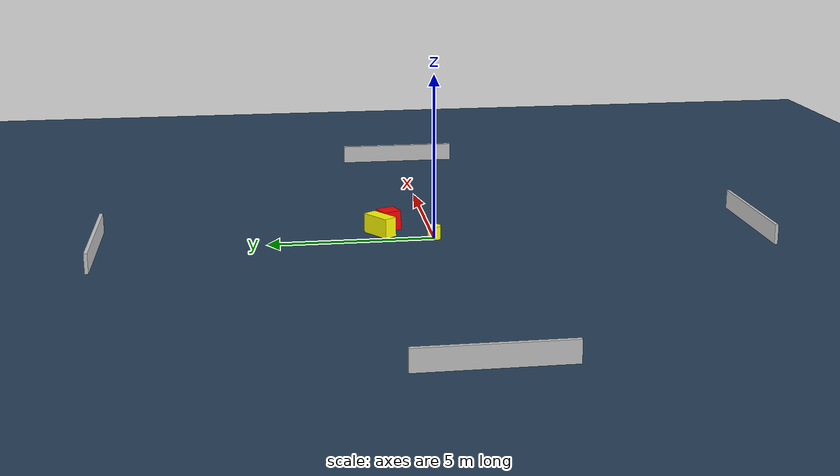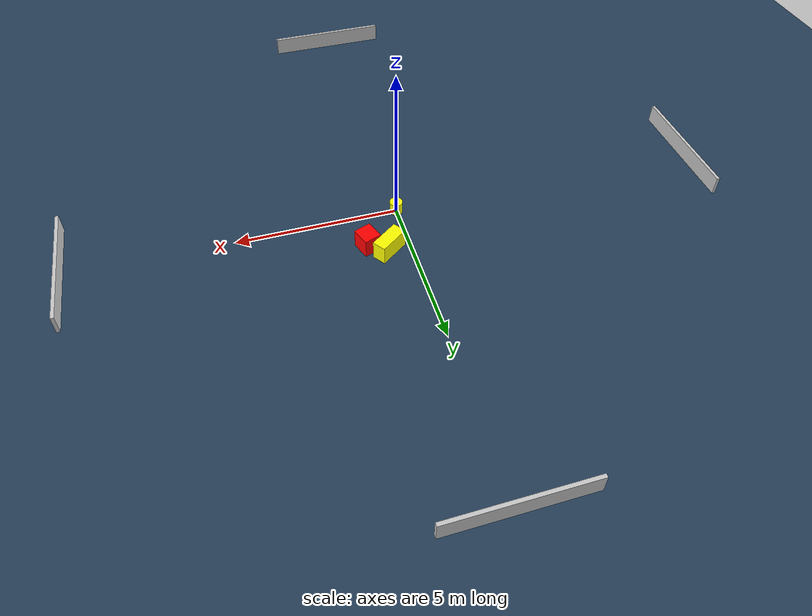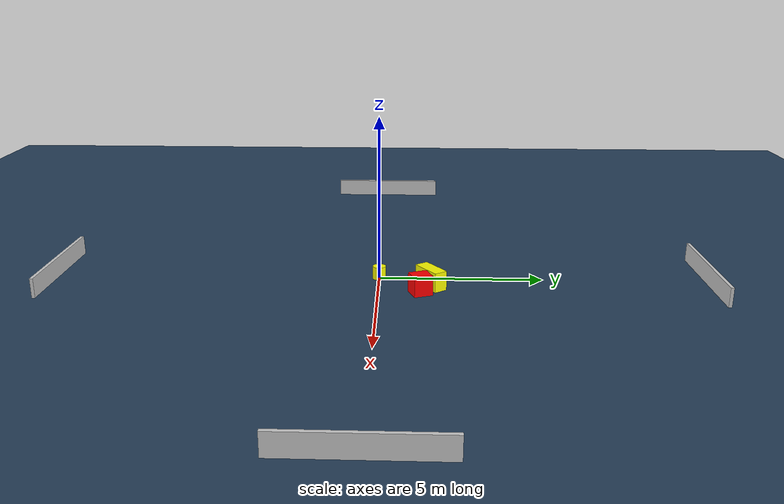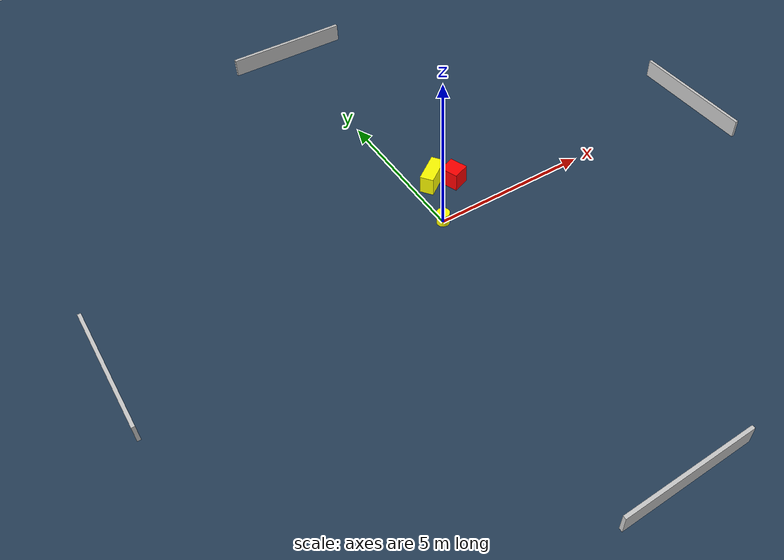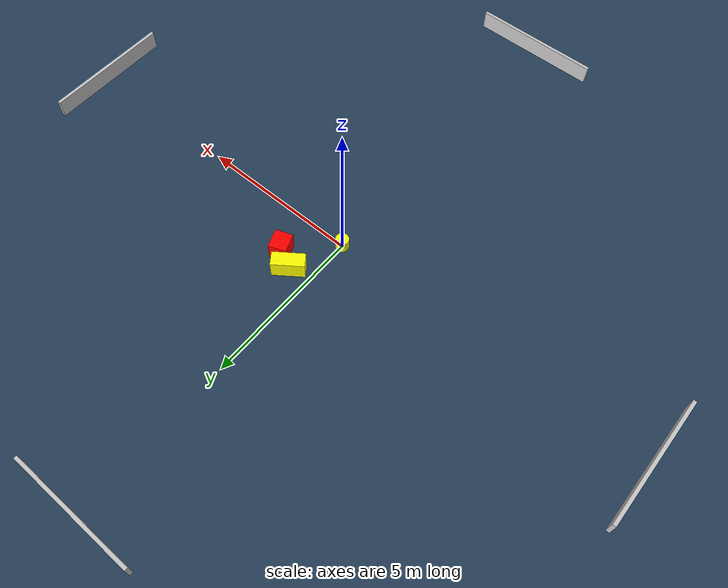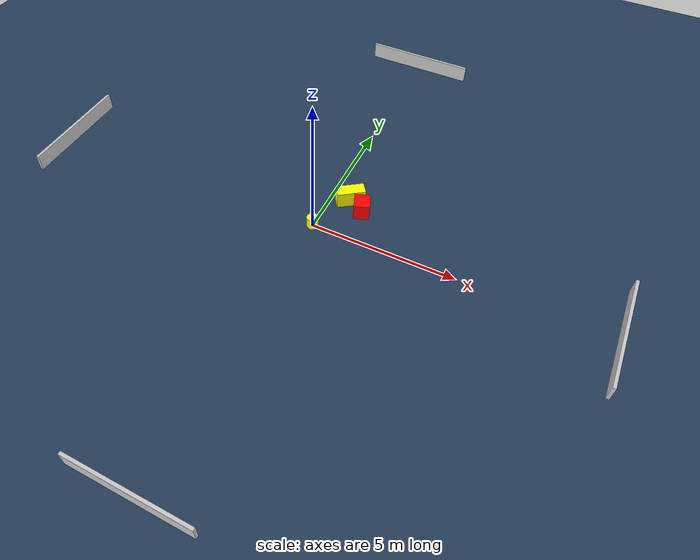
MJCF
<?xml version="1.0" ?>
<mujoco model="generated_environment">
  <option timestep="0.01" integrator="RK4" cone="elliptic"/>
  <default>
    <geom density="1"/>
  </default>
  <asset>
    <texture builtin="gradient" height="3072" name="skybox" rgb1="0.3 0.5 0.7" rgb2="0 0 0" type="skybox" width="512"/>
    <texture builtin="checker" height="300" name="groundplane" rgb1="0.2 0.3 0.4" rgb2="0.1 0.2 0.3" type="2d" width="300"/>
    <material name="groundplane" reflectance="0.2" texrepeat="5 5" texture="groundplane"/>
  </asset>
  <worldbody>
    <light dir="0 0 -1" directional="true" pos="0 0 1.5"/>
    <geom condim="3" friction="0.5 0.005 0.001" material="groundplane" name="floor" pos="0 0 0" size="0 0 0.05" type="plane"/>
    <body name="walls">
      <geom name="wall_1" condim="4" pos="-10.0 0.0 0.3" rgba="0.800000011920929 0.800000011920929 0.800000011920929 1.0" size="0.05 2.0 0.3" type="box"/>
      <geom name="wall_2" condim="4" pos="10.0 0.0 0.3" rgba="0.800000011920929 0.800000011920929 0.800000011920929 1.0" size="0.05 2.0 0.3" type="box"/>
      <geom name="wall_3" condim="4" pos="0.0 -10.0 0.3" rgba="0.800000011920929 0.800000011920929 0.800000011920929 1.0" size="2.0 0.05 0.3" type="box"/>
      <geom name="wall_4" condim="4" pos="0.0 10.0 0.3" rgba="0.800000011920929 0.800000011920929 0.800000011920929 1.0" size="2.0 0.05 0.3" type="box"/>
    </body>
    <body name="robot">
      <joint name="joint_x" type="slide" pos="0 0 0" axis="1 0 0"/>
      <joint name="joint_y" type="slide" pos="0 0 0" axis="0 1 0"/>
      <geom name="robot" type="cylinder" pos="0.0 0.0 0.2" size="0.2 0.2 0.0" mass="5.0" friction="1.0 0.005 0.0001" condim="4" rgba="1.0 1.0 0.0 1.0"/>
    </body>
    <body name="obstacle_1_movable">
      <geom name="obstacle_1_movable" condim="4" pos="0.6578885078419598 1.5735612645405193 0.3" euler="0 0 305.8954830525971" friction="0.0 0.005 0.001" rgba="1.0 1.0 0.0 1.0" size="0.21173086062665272 0.4891957942836371 0.3" type="box" mass="0.1"/>
      <joint type="free"/>
    </body>
    <body name="obstacle_2_static">
      <geom name="obstacle_2_static" condim="4" pos="1.2265961252754618 1.2558021219013484 0.3" euler="0 0 200.4712850115663" friction="0.0 0.005 0.001" rgba="1.0 0.0 0.0 1.0" size="0.2716622061669016 0.2899130869536591 0.3" type="box"/>
    </body>
  </worldbody>
  <actuator>
    <motor name="actuator_x" joint="joint_x" gear="1" ctrlrange="-1 1"/>
    <motor name="actuator_y" joint="joint_y" gear="1" ctrlrange="-1 1"/>
  </actuator>
</mujoco>
